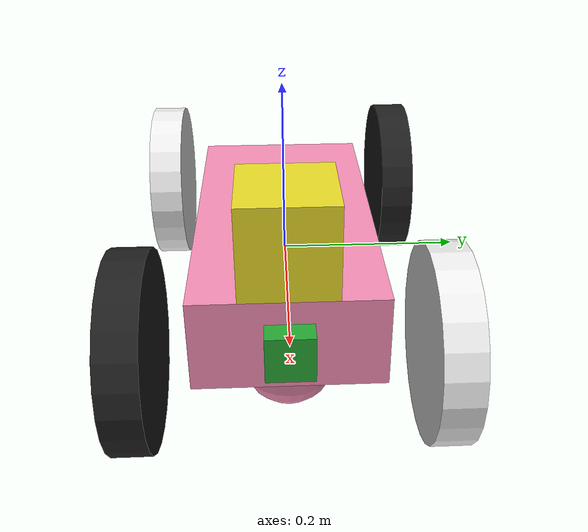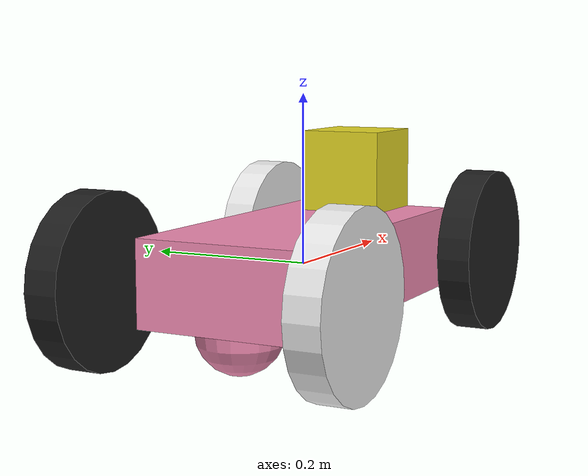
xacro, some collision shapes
<?xml version="1.0"?>

<robot name="submit_robot" xmlns:xacro="https://www.ros.org/wiki/xacro">
    <link name="robot_footprint"></link>

    <!-- Plugins -->
    <xacro:include filename="$(find my_robot)/urdf/submit_robot.gazebo"/>

    <joint name="robot_footprint_joint" type="fixed">
        <origin xyz="0 0 0" rpy="0 0 0"/>
        <parent link="robot_footprint"/>
        <child link="chassis"/>
    </joint>

    <link name="chassis">
        <pose> xyz=0 0 0.1 0 0 -0.30 </pose>
        <inertial>
            <origin xyz="0 0 0" rpy="0 0 0"/>
            <mass value="15.0"/>
            <inertia
                ixx="0.1" ixy="0.0" ixz="0.0"
                iyy="0.1" iyz="0.1"
                izz="0.1"/>
        </inertial>
        <visual name="chassis_visual">
            <origin xyz="0 0 0" rpy="0 0 0"/>
            <geometry>
                <box size=".4 .2 .1"/>
            </geometry>
        </visual>
        <collision name="chassis_collision">
            <origin xyz="0 0 0" rpy="0 0 0"/>
            <geometry>
                <box size=".4 .2 .1"/>
            </geometry>
        </collision>

        <visual name="front_caster_visual">
            <origin xyz="0.15 0 -0.05" rpy="0 0 0"/>
            <geometry>
                <sphere radius="0.05"/>
            </geometry>
        </visual>
        <collision name="front_caster_collision">
            <origin xyz="0.15 0 -0.05" rpy="0 0 0"/>
            <geometry>
                <sphere radius="0.0499"/>
            </geometry>
        </collision>
        <visual name="back_caster_visual">
            <origin xyz="-0.15 0 -0.05" rpy="0 0 0"/>
            <geometry>
                <sphere radius="0.05"/>
            </geometry>
        </visual>
        <collision name="back_caster_collision">
            <origin xyz="-0.15 0 -0.05" rpy="0 0 0"/>
            <geometry>
                <sphere radius="0.0499"/>
            </geometry>
        </collision>
    </link>

    <!-- Left front wheel -->
    <link name="left_front_wheel">
        <inertial>
            <origin xyz="0 0 0" rpy="0 1.5707 1.5707"/>
            <mass value="1.2"/>
            <geometry>
                <cylinder radius="0.1" length="0.04"/>
            </geometry>
            <inertia
                ixx="0.012411765597" ixy="0" ixz="0"
                iyy="0.015218160428" iyz="0"
                izz="0.011763977943"/>
        </inertial>
        <visual name="left_front_wheel_visual">
            <origin xyz="0 0 0" rpy="0 1.5707 1.5707"/>
            <geometry>
                <cylinder radius="0.1" length="0.04"/>
            </geometry>
        </visual>
        <collision name="left_front_wheel_collision">
            <origin xyz="0 0 0" rpy="0 1.5707 1.5707"/>
            <geometry>
                <cylinder radius="0.1" length="0.04"/>
            </geometry>
        </collision>
    </link>
    <joint name="left_front_wheel_joint" type="continuous">
        <origin xyz="0.2 0.15 0.0" rpy="0 0 0"/>
        <parent link="chassis"/>
        <child link="left_front_wheel"/>
        <axis xyz="0 1 0" rpy="0 0 0"/>
        <limits effort="10000" velocity="1000"/>
        <dynamics damping="1.0" friction="1.0"/>
    </joint>

    <!-- Right front wheel -->
    <link name="right_front_wheel">
        <inertial>
            <origin xyz="0 0 0" rpy="0 1.5707 1.5707"/>
            <mass value="1.2"/>
            <geometry>
                <cylinder radius="0.1" length="0.04"/>
            </geometry>
            <inertia
                ixx="0.012411765597" ixy="0" ixz="0"
                iyy="0.015218160428" iyz="0"
                izz="0.011763977943"/>
        </inertial>
        <visual name="right_front_wheel_visual">
            <origin xyz="0 0 0" rpy="0 1.5707 1.5707"/>
            <geometry>
                <cylinder radius="0.1" length="0.04"/>
            </geometry>
        </visual>
        <collision name="right_front_wheel_collision">
            <origin xyz="0 0 0" rpy="0 1.5707 1.5707"/>
            <geometry>
                <cylinder radius="0.1" length="0.04"/>
            </geometry>
        </collision>
    </link>
    <joint name="right_front_wheel_joint" type="continuous">
        <origin xyz="0.2 -0.15 0.0" rpy="0 0 0"/>
        <parent link="chassis"/>
        <child link="right_front_wheel"/>
        <axis xyz="0 1 0" rpy="0 0 0"/>
        <limits effort="10000" velocity="1000"/>
        <dynamics damping="1.0" friction="1.0"/>
    </joint>

    <!-- Left back wheel -->
    <link name="left_back_wheel">
        <inertial>
            <origin xyz="0 0 0" rpy="0 1.5707 1.5707"/>
            <mass value="1.2"/>
            <geometry>
                <cylinder radius="0.1" length="0.04"/>
            </geometry>
            <inertia
                ixx="0.012411765597" ixy="0" ixz="0"
                iyy="0.015218160428" iyz="0"
                izz="0.011763977943"/>
        </inertial>
        <visual name="left_back_wheel_visual">
            <origin xyz="0 0 0" rpy="0 1.5707 1.5707"/>
            <geometry>
                <cylinder radius="0.1" length="0.04"/>
            </geometry>
        </visual>
        <collision name="left_back_wheel_collision">
            <origin xyz="0 0 0" rpy="0 1.5707 1.5707"/>
            <geometry>
                <cylinder radius="0.1" length="0.04"/>
            </geometry>
        </collision>
    </link>
    <joint name="left_back_wheel_joint" type="continuous">
        <origin xyz="-0.2 0.15 0.0" rpy="0 0 0"/>
        <parent link="chassis"/>
        <child link="left_back_wheel"/>
        <axis xyz="0 1 0" rpy="0 0 0"/>
        <limits effort="10000" velocity="1000"/>
        <dynamics damping="1.0" friction="1.0"/>
    </joint>

    <!-- Right back wheel -->
    <link name="right_back_wheel">
        <inertial>
            <origin xyz="0 0 0" rpy="0 1.5707 1.5707"/>
            <mass value="1.2"/>
            <geometry>
                <cylinder radius="0.1" length="0.04"/>
            </geometry>
            <inertia
                ixx="0.012411765597" ixy="0" ixz="0"
                iyy="0.015218160428" iyz="0"
                izz="0.011763977943"/>
        </inertial>
        <visual name="right_back_wheel_visual">
            <origin xyz="0 0 0" rpy="0 1.5707 1.5707"/>
            <geometry>
                <cylinder radius="0.1" length="0.04"/>
            </geometry>
        </visual>
        <collision name="right_back_wheel_collision">
            <origin xyz="0 0 0" rpy="0 1.5707 1.5707"/>
            <geometry>
                <cylinder radius="0.1" length="0.04"/>
            </geometry>
        </collision>
    </link>
    <joint name="right_back_wheel_joint" type="continuous">
        <origin xyz="-0.2 -0.15 0.0" rpy="0 0 0"/>
        <parent link="chassis"/>
        <child link="right_back_wheel"/>
        <axis xyz="0 1 0" rpy="0 0 0"/>
        <limits effort="10000" velocity="1000"/>
        <dynamics damping="1.0" friction="1.0"/>
    </joint>

    <link name="camera">
        <inertial>
            <origin xyz="0 0 0" rpy="0 0 0"/>
            <mass value="0.1"/>
            <box_inertia m="0.1" x=".05" y=".05" z=".05"/>
            <inertia
                ixx="1e-6" ixy="0" ixz="0"
                iyy="1e-6" iyz="0"
                izz="1e-6"/>
        </inertial>
        <visual name="camera_visual">
            <origin xyz="0 0 0" rpy="0 0 0"/>
            <geometry>
                <box size="0.05 0.05 0.05"/>
            </geometry>
        </visual>
        <collision name="camera_collision">
            <origin xyz="0 0 0" rpy="0 0 0"/>
            <geometry>
                <box size=".05 .05 .05"/>
            </geometry>
        </collision>
    </link>
    <joint name="camera_joint" type="fixed">
        <origin xyz="0.2 0 0" rpy="0 0 0"/>
        <parent link="chassis"/>
        <child link="camera"/>
    </joint>

    <link name="hokuyo">
        <inertial>
            <origin xyz="0 0 0" rpy="0 0 0"/>
            <mass value="1e-5"/>
            <inertia
                ixx="1e-6" ixy="0" ixz="0"
                iyy="1e-6" iyz="0"
                izz="1e-6"/>
        </inertial>
        <visual name="hokuyo_visual">
            <origin xyz="0 0 0" rpy="0 0 0"/>
            <geometry>
                <mesh filename="package://my_robot/meshes/hokuyo.dae"/>
            </geometry>
        </visual>
        <collision name="hokuyo_visual">
            <origin xyz="0 0 0" rpy="0 0 0"/>
            <geometry>
                <box size="0.1 0.1 0.1"/>
            </geometry>
        </collision>
    </link>
    <joint name="hokuyo_joint" type="fixed">
        <origin xyz="0.15 0 0.1" rpy="0 0 0"/>
        <parent link="chassis"/>
        <child link="hokuyo"/>
        <limit effort="10000" velocity="1000"/>
        <dynamics damping="1.0" friction="1.0"/>
    </joint>

    <!-- Colors -->
    <gazebo reference="chassis">
        <material>Gazebo/Pink</material>
    </gazebo>
    <gazebo reference="right_front_wheel">
        <material>Gazebo/Black</material>
    </gazebo>
    <gazebo reference="left_front_wheel">
        <material>Gazebo/White</material>
    </gazebo>
    <gazebo reference="left_back_wheel">
        <material>Gazebo/Black</material>
    </gazebo>
    <gazebo reference="right_back_wheel">
        <material>Gazebo/White</material>
    </gazebo>
    <gazebo reference="camera">
        <material>Gazebo/Green</material>
    </gazebo>
    <gazebo reference="hokuyo">
        <material>Gazebo/Yellow</material>
    </gazebo>
</robot>
